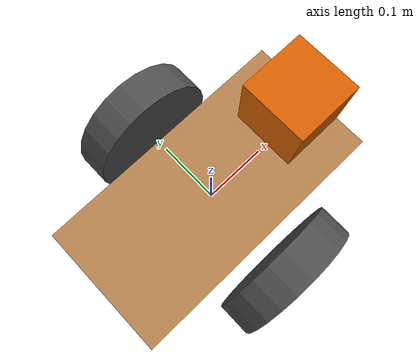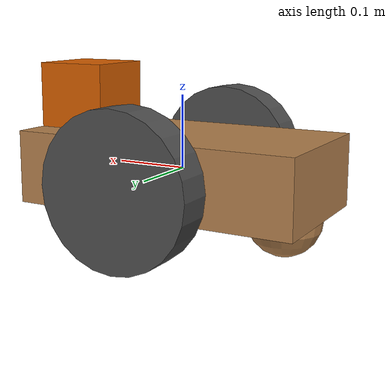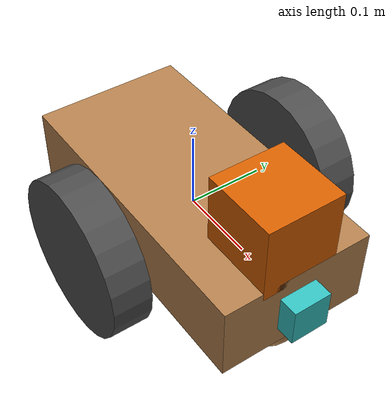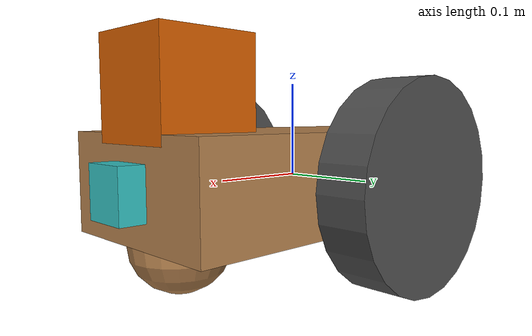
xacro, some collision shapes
<?xml version='1.0'?>

<robot name="my_robot" xmlns:xacro="http://www.ros.org/wiki/xacro">
  <xacro:include filename="$(find my_robot)/urdf/my_robot.gazebo" />

  <!-- Import gazebo elements -->
  <!-- nov05 -->
  <link name="base_link" />                <!-- nov05 -->

  <link name='chassis'>
    <pose>0 0 0.1 0 0 0</pose>
    <inertial>
      <mass value="15.0" />
      <origin xyz="0.0 0 0" rpy=" 0 0 0" />
      <inertia
        ixx="0.1" ixy="0" ixz="0"
        iyy="0.1" iyz="0"
        izz="0.1" />
    </inertial>
    <collision name='chassis_collision'>
      <origin xyz="0 0 0" rpy=" 0 0 0" />
      <geometry>
        <box size=".4 .2 .1" />
      </geometry>
    </collision>
    <visual name='chassis_visual'>
      <origin xyz="0 0 0" rpy=" 0 0 0" />
      <geometry>
        <box size=".4 .2 .1" />
      </geometry>
    </visual>
    <collision name='back_caster_collision'>
      <origin xyz="-0.15 0 -0.05" rpy=" 0 0 0" />
      <geometry>
        <sphere radius="0.0499" />
      </geometry>
    </collision>
    <visual name='back_caster_visual'>
      <origin xyz="-0.15 0 -0.05" rpy=" 0 0 0" />
      <geometry>
        <sphere radius="0.05" />
      </geometry>
    </visual>
    <collision name='front_caster_collision'>
      <origin xyz="0.15 0 -0.05" rpy="0 0 0" />
      <geometry>
        <sphere radius="0.0499" />
      </geometry>
    </collision>
    <visual name='front_caster_visual'>
      <origin xyz="0.15 0 -0.05" rpy="0 0 0" />
      <geometry>
        <sphere radius="0.05" />
      </geometry>
    </visual>
  </link>

  <!-- nov05 -->
  <joint name="base_link_joint" type="fixed">                <!-- nov05 -->
    <origin xyz="0 0 0" rpy="0 0 0" />
    <!-- nov05 -->
    <parent link="base_link" />                              <!-- nov05 -->
    <child link="chassis" />
  </joint>

  <!-- Left Wheel -->
  <link name='left_wheel'>
    <inertial>
      <mass value="5.0" />
      <origin xyz="0.0 0 0" rpy="0 0 0" />
      <inertia
        ixx="0.1" ixy="0" ixz="0"
        iyy="0.1" iyz="0" izz="0.1" />
    </inertial>
    <visual name='left_wheel_visual'>
      <origin xyz="0 0 0" rpy="0 1.5707 1.5707" />
      <geometry>
        <cylinder radius="0.101" length="0.05" />
      </geometry>
    </visual>
    <collision name='left_wheel_collision'>
      <origin xyz="0 0 0" rpy="0 1.5707 1.5707" />
      <geometry>
        <cylinder radius="0.101" length="0.05" />
      </geometry>
    </collision>
  </link>

  <!-- Left Wheel Hinge -->
  <joint type="continuous" name="left_wheel_hinge">
    <origin xyz="0 0.15 0" rpy="0 0 0" />
    <child link="left_wheel" />
    <parent link="chassis" />
    <axis xyz="0 1 0" rpy="0 0 0" />
    <limit effort="10000" velocity="1000" />
    <dynamics damping="1.0" friction="1.0" />
  </joint>

  <link name='right_wheel'>
    <inertial>
      <mass value="5.0" />
      <origin xyz="0.0 0 0" rpy=" 0 0 0" />
      <inertia
        ixx="0.1" ixy="0" ixz="0"
        iyy="0.1" iyz="0"
        izz="0.1" />
    </inertial>
    <visual name='right_wheel_visual'>
      <origin xyz="0 0 0" rpy="0 1.5707 1.5707" />
      <geometry>
        <cylinder radius="0.101" length="0.05" />
      </geometry>
    </visual>
    <collision name='right_wheel_collision'>
      <origin xyz="0 0 0" rpy="0 1.5707 1.5707" />
      <geometry>
        <cylinder radius="0.101" length="0.05" />
      </geometry>
    </collision>
  </link>

  <joint type="continuous" name="right_wheel_hinge">
    <origin xyz="0 -0.15 0" rpy="0 0 0" />
    <child link="right_wheel" />
    <parent link="chassis" />
    <axis xyz="0 1 0" rpy="0 0 0" />
    <limit effort="10000" velocity="1000" />
    <dynamics damping="1.0" friction="1.0" />
  </joint>

  <!-- Camera link -->
  <link name="camera">
    <origin xyz="0 0 0" rpy="0 0 0" />
    <inertial>
      <mass value="1e-5" />
      <origin xyz="0 0 0" rpy="0 0 0" />
      <inertia ixx="1e-6" ixy="0" ixz="0" iyy="1e-6" iyz="0" izz="1e-6" />
    </inertial>
    <visual>
      <origin xyz="0 0 0" rpy="0 0 0" />
      <geometry>
        <box size="0.05 0.05 0.05" />
      </geometry>
    </visual>
    <collision>
      <origin xyz="0 0 0" rpy="0 0 0" />
      <geometry>
        <box size="0.05 0.05 0.05" />
      </geometry>
    </collision>
  </link>

  <!-- Camera joint -->
  <joint name="camera_joint" type="fixed">
    <parent link="chassis" />
    <child link="camera" />
    <origin xyz="0.2 0 0" rpy="0 0 0" />
    <axis xyz="0 1 0" />
  </joint>

  <!-- Hokuyo LiDAR link -->
  <link name="hokuyo">
    <origin xyz="0 0 0" rpy="0 0 0" />
    <inertial>
      <mass value="1e-5" />
      <origin xyz="0 0 0" rpy="0 0 0" />
      <inertia ixx="1e-6" ixy="0" ixz="0" iyy="1e-6" iyz="0" izz="1e-6" />
    </inertial>
    <visual>
      <origin xyz="0 0 0" rpy="0 0 0" />
      <geometry>
        <mesh filename="package://my_robot/meshes/hokuyo.dae" />
      </geometry>
    </visual>
    <collision>
      <origin xyz="0 0 0" rpy="0 0 0" />
      <geometry>
        <box size="0.1 0.1 0.1" />
      </geometry>
    </collision>
  </link>

  <!-- Hokuyo LiDAR joint -->
  <joint name="hokuyo_joint" type="fixed">
    <parent link="chassis" />
    <child link="hokuyo" />
    <origin xyz="0.15 0 0.09" rpy="0 0 0" />
    <axis xyz="0 1 0" />
  </joint>

  <!-- Model materials -->
  <gazebo reference="chassis">
    <material>Gazebo/Wood</material>
  </gazebo>
  <gazebo reference="left_wheel">
    <material>Gazebo/DarkGrey</material>
  </gazebo>
  <gazebo reference="right_wheel">
    <material>Gazebo/DarkGrey</material>
  </gazebo>
  <gazebo reference="camera">
    <material>Gazebo/TurquoiseGlowOutline</material>
  </gazebo>

</robot>
